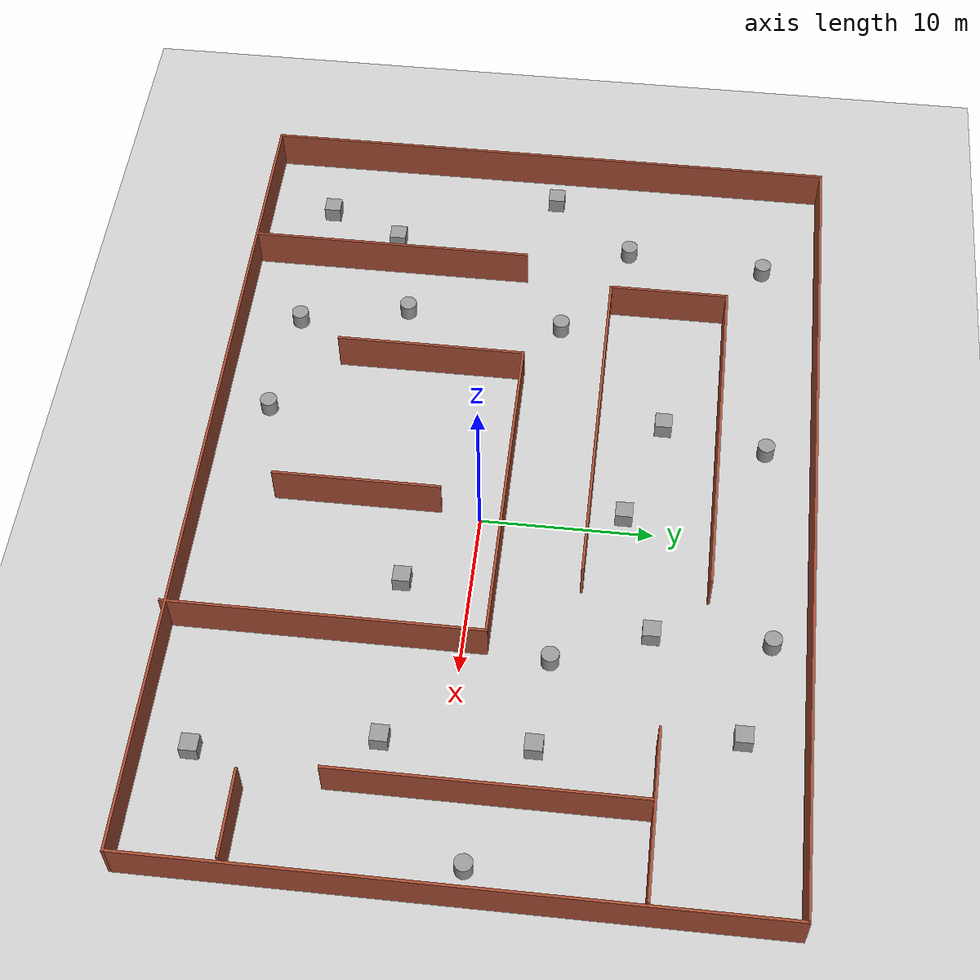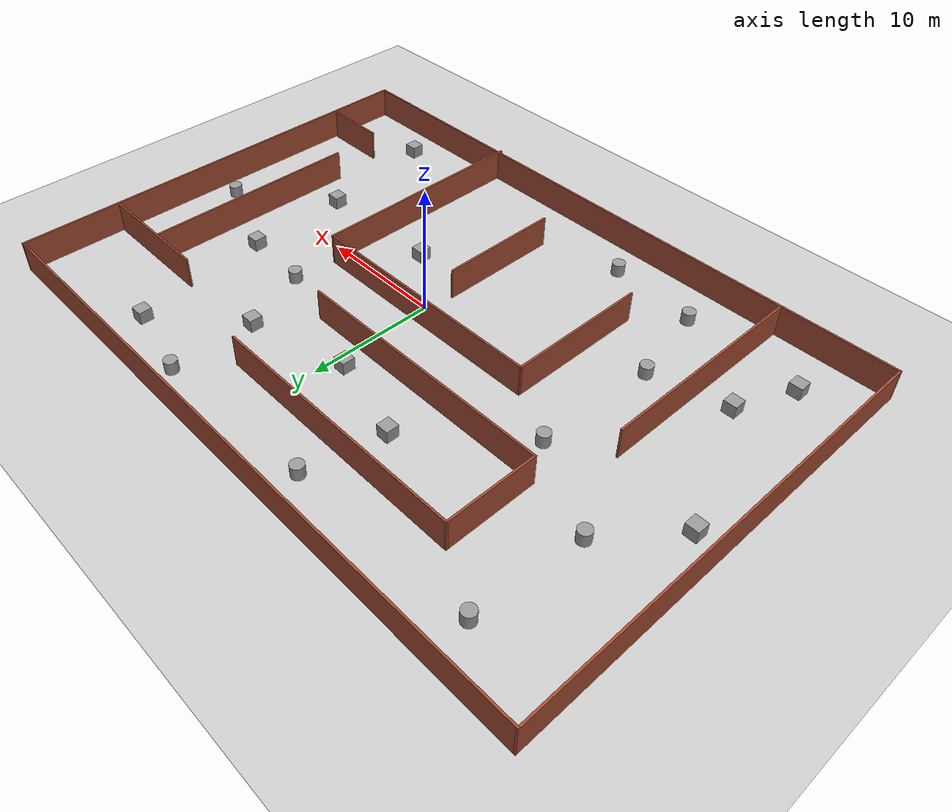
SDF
<sdf version="1.7">
 <world name="default">
  <light name="sun" type="directional">
   <pose>0 0 10 0 -0 0</pose>
   <diffuse>0.8 0.8 0.8 1</diffuse>
   <specular>0.2 0.2 0.2 1</specular>
   <attenuation>
    <range>1000</range>
    <constant>0.9</constant>
    <linear>0.01</linear>
    <quadratic>0.001</quadratic>
   </attenuation>
   <direction>-0.5 0.1 -0.9</direction>
   <spot><inner_angle>0</inner_angle><outer_angle>0</outer_angle><falloff>0</falloff></spot>
  </light>
  <model name="ground_plane">
   <static>1</static>
   <link name="link">
    <collision name="collision">
     <geometry><plane><normal>0 0 1</normal><size>100 100</size></plane></geometry>
     <surface><friction><ode><mu>100</mu><mu2>50</mu2></ode></friction></surface>
    </collision>
    <visual name="visual">
     <cast_shadows>0</cast_shadows>
     <geometry><plane><normal>0 0 1</normal><size>100 100</size></plane></geometry>
     <material>
      <script><uri>file://media/materials/scripts/gazebo.material</uri><name>Gazebo/Grey</name></script>
     </material>
    </visual>
   </link>
  </model>
  <gravity>0 0 -9.8</gravity>
  <magnetic_field>6e-06 2.3e-05 -4.2e-05</magnetic_field>
  <atmosphere type="adiabatic"/>
  <physics type="ode">
   <max_step_size>0.001</max_step_size>
   <real_time_factor>1</real_time_factor>
   <real_time_update_rate>1000</real_time_update_rate>
  </physics>
  <scene><ambient>0.4 0.4 0.4 1</ambient><background>0.7 0.7 0.7 1</background><shadows>1</shadows></scene>
  <spherical_coordinates>
   <surface_model>EARTH_WGS84</surface_model>
   <latitude_deg>0</latitude_deg>
   <longitude_deg>0</longitude_deg>
   <elevation>0</elevation>
   <heading_deg>0</heading_deg>
  </spherical_coordinates>
  <model name="teb_world">
   <pose>-1.9036 1.21909 0 0 -0 0</pose>
   <link name="Wall_10">
    <collision name="Wall_10_Collision">
     <geometry><box><size>7.25 0.15 2.5</size></box></geometry>
     <pose>0 0 1.25 0 -0 0</pose>
    </collision>
    <visual name="Wall_10_Visual">
     <pose>0 0 1.25 0 -0 0</pose>
     <geometry><box><size>7.25 0.15 2.5</size></box></geometry>
     <material>
      <script><uri>file://media/materials/scripts/gazebo.material</uri><name>Gazebo/Bricks</name></script>
      <ambient>1 1 1 1</ambient>
     </material>
     <meta><layer>0</layer></meta>
    </visual>
    <pose>-14.5047 8.54185 0 0 -0 -1.5708</pose>
   </link>
   <link name="Wall_11">
    <collision name="Wall_11_Collision">
     <geometry><box><size>20.75 0.15 2.5</size></box></geometry>
     <pose>0 0 1.25 0 -0 0</pose>
    </collision>
    <visual name="Wall_11_Visual">
     <pose>0 0 1.25 0 -0 0</pose>
     <geometry><box><size>20.75 0.15 2.5</size></box></geometry>
     <material>
      <script><uri>file://media/materials/scripts/gazebo.material</uri><name>Gazebo/Bricks</name></script>
      <ambient>1 1 1 1</ambient>
     </material>
     <meta><layer>0</layer></meta>
    </visual>
    <pose>-4.20469 4.99185 0 0 -0 0</pose>
   </link>
   <link name="Wall_14">
    <collision name="Wall_14_Collision">
     <geometry><box><size>17 0.15 2.5</size></box></geometry>
     <pose>0 0 1.25 0 -0 0</pose>
    </collision>
    <visual name="Wall_14_Visual">
     <pose>0 0 1.25 0 -0 0</pose>
     <geometry><box><size>17 0.15 2.5</size></box></geometry>
     <material>
      <script><uri>file://media/materials/scripts/gazebo.material</uri><name>Gazebo/Bricks</name></script>
      <ambient>1 1 1 1</ambient>
     </material>
     <meta><layer>0</layer></meta>
    </visual>
    <pose>-16.5669 -8.83489 0 0 -0 -1.5708</pose>
   </link>
   <link name="Wall_16">
    <collision name="Wall_16_Collision">
     <geometry><box><size>19.5 0.15 2.5</size></box></geometry>
     <pose>0 0 1.25 0 -0 0</pose>
    </collision>
    <visual name="Wall_16_Visual">
     <pose>0 0 1.25 0 -0 0</pose>
     <geometry><box><size>19.5 0.15 2.5</size></box></geometry>
     <material>
      <script><uri>file://media/materials/scripts/gazebo.material</uri><name>Gazebo/Bricks</name></script>
      <ambient>1 1 1 1</ambient>
     </material>
     <meta><layer>0</layer></meta>
    </visual>
    <pose>0.935569 0.159379 0 0 -0 0</pose>
   </link>
   <link name="Wall_17">
    <collision name="Wall_17_Collision">
     <geometry><box><size>18 0.15 2.5</size></box></geometry>
     <pose>0 0 1.25 0 -0 0</pose>
    </collision>
    <visual name="Wall_17_Visual">
     <pose>0 0 1.25 0 -0 0</pose>
     <geometry><box><size>18 0.15 2.5</size></box></geometry>
     <material>
      <script><uri>file://media/materials/scripts/gazebo.material</uri><name>Gazebo/Bricks</name></script>
      <ambient>1 1 1 1</ambient>
     </material>
     <meta><layer>0</layer></meta>
    </visual>
    <pose>10.6106 -8.76562 0 0 -0 -1.5708</pose>
   </link>
   <link name="Wall_19">
    <collision name="Wall_19_Collision">
     <geometry><box><size>11.25 0.15 2.5</size></box></geometry>
     <pose>0 0 1.25 0 -0 0</pose>
    </collision>
    <visual name="Wall_19_Visual">
     <pose>0 0 1.25 0 -0 0</pose>
     <geometry><box><size>11.25 0.15 2.5</size></box></geometry>
     <material>
      <script><uri>file://media/materials/scripts/gazebo.material</uri><name>Gazebo/Bricks</name></script>
      <ambient>1 1 1 1</ambient>
     </material>
     <meta><layer>0</layer></meta>
    </visual>
    <pose>-8.73943 -5.39062 0 0 -0 -1.5708</pose>
   </link>
   <link name="Wall_22">
    <collision name="Wall_22_Collision">
     <geometry><box><size>9.75 0.15 2.5</size></box></geometry>
     <pose>0 0 1.25 0 -0 0</pose>
    </collision>
    <visual name="Wall_22_Visual">
     <pose>0 0 1.25 0 -0 0</pose>
     <geometry><box><size>9.75 0.15 2.5</size></box></geometry>
     <material>
      <script><uri>file://media/materials/scripts/gazebo.material</uri><name>Gazebo/Bricks</name></script>
      <ambient>1 1 1 1</ambient>
     </material>
     <meta><layer>0</layer></meta>
    </visual>
    <pose>20.2546 9.83698 0 0 -0 0</pose>
   </link>
   <link name="Wall_24">
    <collision name="Wall_24_Collision">
     <geometry><box><size>17.25 0.15 2.5</size></box></geometry>
     <pose>0 0 1.25 0 -0 0</pose>
    </collision>
    <visual name="Wall_24_Visual">
     <pose>0 0 1.25 0 -0 0</pose>
     <geometry><box><size>17.25 0.15 2.5</size></box></geometry>
     <material>
      <script><uri>file://media/materials/scripts/gazebo.material</uri><name>Gazebo/Bricks</name></script>
      <ambient>1 1 1 1</ambient>
     </material>
     <meta><layer>0</layer></meta>
    </visual>
    <pose>19.5818 1.14467 0 0 -0 -1.5708</pose>
   </link>
   <link name="Wall_26">
    <collision name="Wall_26_Collision">
     <geometry><box><size>5 0.15 2.5</size></box></geometry>
     <pose>0 0 1.25 0 -0 0</pose>
    </collision>
    <visual name="Wall_26_Visual">
     <pose>0 0 1.25 0 -0 0</pose>
     <geometry><box><size>5 0.15 2.5</size></box></geometry>
     <material>
      <script><uri>file://media/materials/scripts/gazebo.material</uri><name>Gazebo/Bricks</name></script>
      <ambient>1 1 1 1</ambient>
     </material>
     <meta><layer>0</layer></meta>
    </visual>
    <pose>22.5761 -11.653 0 0 -0 0</pose>
   </link>
   <link name="Wall_28">
    <collision name="Wall_28_Collision">
     <geometry><box><size>9.75 0.15 2.5</size></box></geometry>
     <pose>0 0 1.25 0 -0 0</pose>
    </collision>
    <visual name="Wall_28_Visual">
     <pose>0 0 1.25 0 -0 0</pose>
     <geometry><box><size>9.75 0.15 2.5</size></box></geometry>
     <material>
      <script><uri>file://media/materials/scripts/gazebo.material</uri><name>Gazebo/Bricks</name></script>
      <ambient>1 1 1 1</ambient>
     </material>
     <meta><layer>0</layer></meta>
    </visual>
    <pose>1.50744 -8.34088 0 0 -0 -1.5708</pose>
   </link>
   <link name="Wall_4">
    <collision name="Wall_4_Collision">
     <geometry><box><size>50.75 0.15 2.5</size></box></geometry>
     <pose>0 0 1.25 0 -0 0</pose>
    </collision>
    <visual name="Wall_4_Visual">
     <pose>0 0 1.25 0 -0 0</pose>
     <geometry><box><size>50.75 0.15 2.5</size></box></geometry>
     <material>
      <script><uri>file://media/materials/scripts/gazebo.material</uri><name>Gazebo/Bricks</name></script>
      <ambient>1 1 1 1</ambient>
     </material>
     <meta><layer>0</layer></meta>
    </visual>
    <pose>0 17.6906 0 0 -0 0</pose>
   </link>
   <link name="Wall_5">
    <collision name="Wall_5_Collision">
     <geometry><box><size>35.25 0.15 2.5</size></box></geometry>
     <pose>0 0 1.25 0 -0 0</pose>
    </collision>
    <visual name="Wall_5_Visual">
     <pose>0 0 1.25 0 -0 0</pose>
     <geometry><box><size>35.25 0.15 2.5</size></box></geometry>
     <material>
      <script><uri>file://media/materials/scripts/gazebo.material</uri><name>Gazebo/Bricks</name></script>
      <ambient>1 1 1 1</ambient>
     </material>
     <meta><layer>0</layer></meta>
    </visual>
    <pose>25.3 0.140621 0 0 -0 -1.5708</pose>
   </link>
   <link name="Wall_6">
    <collision name="Wall_6_Collision">
     <geometry><box><size>50.75 0.15 2.5</size></box></geometry>
     <pose>0 0 1.25 0 -0 0</pose>
    </collision>
    <visual name="Wall_6_Visual">
     <pose>0 0 1.25 0 -0 0</pose>
     <geometry><box><size>50.75 0.15 2.5</size></box></geometry>
     <material>
      <script><uri>file://media/materials/scripts/gazebo.material</uri><name>Gazebo/Bricks</name></script>
      <ambient>1 1 1 1</ambient>
     </material>
     <meta><layer>0</layer></meta>
    </visual>
    <pose>0 -17.4094 0 0 -0 3.14159</pose>
   </link>
   <link name="Wall_7">
    <collision name="Wall_7_Collision">
     <geometry><box><size>35.25 0.15 2.5</size></box></geometry>
     <pose>0 0 1.25 0 -0 0</pose>
    </collision>
    <visual name="Wall_7_Visual">
     <pose>0 0 1.25 0 -0 0</pose>
     <geometry><box><size>35.25 0.15 2.5</size></box></geometry>
     <material>
      <script><uri>file://media/materials/scripts/gazebo.material</uri><name>Gazebo/Bricks</name></script>
      <ambient>1 1 1 1</ambient>
     </material>
     <meta><layer>0</layer></meta>
    </visual>
    <pose>-25.3 0.140621 0 0 -0 1.5708</pose>
   </link>
   <link name="Wall_9">
    <collision name="Wall_9_Collision">
     <geometry><box><size>20.75 0.15 2.5</size></box></geometry>
     <pose>0 0 1.25 0 -0 0</pose>
    </collision>
    <visual name="Wall_9_Visual">
     <pose>0 0 1.25 0 -0 0</pose>
     <geometry><box><size>20.75 0.15 2.5</size></box></geometry>
     <material>
      <script><uri>file://media/materials/scripts/gazebo.material</uri><name>Gazebo/Bricks</name></script>
      <ambient>1 1 1 1</ambient>
     </material>
     <meta><layer>0</layer></meta>
    </visual>
    <pose>-4.20469 12.0918 0 0 -0 3.14159</pose>
   </link>
   <static>1</static>
  </model>
  <model name="unit_cylinder">
   <pose>-6.69066 -13.4698 0.499992 -3e-06 2e-06 0</pose>
   <link name="link">
    <inertial>
     <mass>1</mass>
     <inertia><ixx>0.145833</ixx><ixy>0</ixy><ixz>0</ixz><iyy>0.145833</iyy><iyz>0</iyz><izz>0.125</izz></inertia>
    </inertial>
    <collision name="collision">
     <geometry><cylinder><radius>0.5</radius><length>1</length></cylinder></geometry>
    </collision>
    <visual name="visual">
     <geometry><cylinder><radius>0.5</radius><length>1</length></cylinder></geometry>
     <material>
      <script><name>Gazebo/Grey</name><uri>file://media/materials/scripts/gazebo.material</uri></script>
     </material>
    </visual>
   </link>
  </model>
  <model name="unit_cylinder_0">
   <pose>-13.6322 -12.7486 0.499998 3e-06 -2e-06 0</pose>
   <link name="link">
    <inertial>
     <mass>1</mass>
     <inertia><ixx>0.145833</ixx><ixy>0</ixy><ixz>0</ixz><iyy>0.145833</iyy><iyz>0</iyz><izz>0.125</izz></inertia>
    </inertial>
    <collision name="collision">
     <geometry><cylinder><radius>0.5</radius><length>1</length></cylinder></geometry>
    </collision>
    <visual name="visual">
     <geometry><cylinder><radius>0.5</radius><length>1</length></cylinder></geometry>
     <material>
      <script><name>Gazebo/Grey</name><uri>file://media/materials/scripts/gazebo.material</uri></script>
     </material>
    </visual>
   </link>
  </model>
  <model name="unit_cylinder_1">
   <pose>-15.0646 -6.21021 0.499998 3e-06 -2e-06 0</pose>
   <link name="link">
    <inertial>
     <mass>1</mass>
     <inertia><ixx>0.145833</ixx><ixy>0</ixy><ixz>0</ixz><iyy>0.145833</iyy><iyz>0</iyz><izz>0.125</izz></inertia>
    </inertial>
    <collision name="collision">
     <geometry><cylinder><radius>0.5</radius><length>1</length></cylinder></geometry>
    </collision>
    <visual name="visual">
     <geometry><cylinder><radius>0.5</radius><length>1</length></cylinder></geometry>
     <material>
      <script><name>Gazebo/Grey</name><uri>file://media/materials/scripts/gazebo.material</uri></script>
     </material>
    </visual>
   </link>
  </model>
  <model name="unit_cylinder_2">
   <pose>-14.6046 3.33713 0.499997 3e-06 -2e-06 0</pose>
   <link name="link">
    <inertial>
     <mass>1</mass>
     <inertia><ixx>0.145833</ixx><ixy>0</ixy><ixz>0</ixz><iyy>0.145833</iyy><iyz>0</iyz><izz>0.125</izz></inertia>
    </inertial>
    <collision name="collision">
     <geometry><cylinder><radius>0.5</radius><length>1</length></cylinder></geometry>
    </collision>
    <visual name="visual">
     <geometry><cylinder><radius>0.5</radius><length>1</length></cylinder></geometry>
     <material>
      <script><name>Gazebo/Grey</name><uri>file://media/materials/scripts/gazebo.material</uri></script>
     </material>
    </visual>
   </link>
  </model>
  <model name="unit_box">
   <pose>-22.8413 -12.1652 0.5 0 -0 0</pose>
   <link name="link">
    <inertial>
     <mass>1</mass>
     <inertia>
      <ixx>0.166667</ixx>
      <ixy>0</ixy>
      <ixz>0</ixz>
      <iyy>0.166667</iyy>
      <iyz>0</iyz>
      <izz>0.166667</izz>
     </inertia>
    </inertial>
    <collision name="collision"><geometry><box><size>1 1 1</size></box></geometry></collision>
    <visual name="visual">
     <geometry><box><size>1 1 1</size></box></geometry>
     <material>
      <script><name>Gazebo/Grey</name><uri>file://media/materials/scripts/gazebo.material</uri></script>
     </material>
    </visual>
   </link>
  </model>
  <model name="unit_box_0">
   <pose>-20.9247 -7.65712 0.5 -0 -0 -0</pose>
   <link name="link">
    <inertial>
     <mass>1</mass>
     <inertia>
      <ixx>0.166667</ixx>
      <ixy>0</ixy>
      <ixz>0</ixz>
      <iyy>0.166667</iyy>
      <iyz>0</iyz>
      <izz>0.166667</izz>
     </inertia>
    </inertial>
    <collision name="collision"><geometry><box><size>1 1 1</size></box></geometry></collision>
    <visual name="visual">
     <geometry><box><size>1 1 1</size></box></geometry>
     <material>
      <script><name>Gazebo/Grey</name><uri>file://media/materials/scripts/gazebo.material</uri></script>
     </material>
    </visual>
   </link>
  </model>
  <model name="unit_box_1">
   <pose>-25.1898 2.11963 0.5 0 -0 0</pose>
   <link name="link">
    <inertial>
     <mass>1</mass>
     <inertia>
      <ixx>0.166667</ixx>
      <ixy>0</ixy>
      <ixz>0</ixz>
      <iyy>0.166667</iyy>
      <iyz>0</iyz>
      <izz>0.166667</izz>
     </inertia>
    </inertial>
    <collision name="collision"><geometry><box><size>1 1 1</size></box></geometry></collision>
    <visual name="visual">
     <geometry><box><size>1 1 1</size></box></geometry>
     <material>
      <script><name>Gazebo/Grey</name><uri>file://media/materials/scripts/gazebo.material</uri></script>
     </material>
    </visual>
   </link>
  </model>
  <model name="unit_cylinder_3">
   <pose>-21.2014 7.10299 0.499992 -3e-06 2e-06 0</pose>
   <link name="link">
    <inertial>
     <mass>1</mass>
     <inertia><ixx>0.145833</ixx><ixy>0</ixy><ixz>0</ixz><iyy>0.145833</iyy><iyz>0</iyz><izz>0.125</izz></inertia>
    </inertial>
    <collision name="collision">
     <geometry><cylinder><radius>0.5</radius><length>1</length></cylinder></geometry>
    </collision>
    <visual name="visual">
     <geometry><cylinder><radius>0.5</radius><length>1</length></cylinder></geometry>
     <material>
      <script><name>Gazebo/Grey</name><uri>file://media/materials/scripts/gazebo.material</uri></script>
     </material>
    </visual>
   </link>
  </model>
  <model name="unit_cylinder_4">
   <pose>-20.5482 15.5499 0.499997 3e-06 -3e-06 0</pose>
   <link name="link">
    <inertial>
     <mass>1</mass>
     <inertia><ixx>0.145833</ixx><ixy>0</ixy><ixz>0</ixz><iyy>0.145833</iyy><iyz>0</iyz><izz>0.125</izz></inertia>
    </inertial>
    <collision name="collision">
     <geometry><cylinder><radius>0.5</radius><length>1</length></cylinder></geometry>
    </collision>
    <visual name="visual">
     <geometry><cylinder><radius>0.5</radius><length>1</length></cylinder></geometry>
     <material>
      <script><name>Gazebo/Grey</name><uri>file://media/materials/scripts/gazebo.material</uri></script>
     </material>
    </visual>
   </link>
  </model>
  <model name="unit_box_2">
   <pose>-7.62954 10.0706 0.5 -0 -0 -0</pose>
   <link name="link">
    <inertial>
     <mass>1</mass>
     <inertia>
      <ixx>0.166667</ixx>
      <ixy>0</ixy>
      <ixz>0</ixz>
      <iyy>0.166667</iyy>
      <iyz>0</iyz>
      <izz>0.166667</izz>
     </inertia>
    </inertial>
    <collision name="collision"><geometry><box><size>1 1 1</size></box></geometry></collision>
    <visual name="visual">
     <geometry><box><size>1 1 1</size></box></geometry>
     <material>
      <script><name>Gazebo/Grey</name><uri>file://media/materials/scripts/gazebo.material</uri></script>
     </material>
    </visual>
   </link>
  </model>
  <model name="unit_cylinder_5">
   <pose>-6.41047 16.1659 0.499992 -3e-06 3e-06 0</pose>
   <link name="link">
    <inertial>
     <mass>1</mass>
     <inertia><ixx>0.145833</ixx><ixy>0</ixy><ixz>0</ixz><iyy>0.145833</iyy><iyz>0</iyz><izz>0.125</izz></inertia>
    </inertial>
    <collision name="collision">
     <geometry><cylinder><radius>0.5</radius><length>1</length></cylinder></geometry>
    </collision>
    <visual name="visual">
     <geometry><cylinder><radius>0.5</radius><length>1</length></cylinder></geometry>
     <material>
      <script><name>Gazebo/Grey</name><uri>file://media/materials/scripts/gazebo.material</uri></script>
     </material>
    </visual>
   </link>
  </model>
  <model name="unit_box_3">
   <pose>-0.996435 8.20843 0.5 -0 -0 -0</pose>
   <link name="link">
    <inertial>
     <mass>1</mass>
     <inertia>
      <ixx>0.166667</ixx>
      <ixy>0</ixy>
      <ixz>0</ixz>
      <iyy>0.166667</iyy>
      <iyz>0</iyz>
      <izz>0.166667</izz>
     </inertia>
    </inertial>
    <collision name="collision"><geometry><box><size>1 1 1</size></box></geometry></collision>
    <visual name="visual">
     <geometry><box><size>1 1 1</size></box></geometry>
     <material>
      <script><name>Gazebo/Grey</name><uri>file://media/materials/scripts/gazebo.material</uri></script>
     </material>
    </visual>
   </link>
  </model>
  <model name="unit_box_4">
   <pose>4.6681 -3.84066 0.5 0 -0 0</pose>
   <link name="link">
    <inertial>
     <mass>1</mass>
     <inertia>
      <ixx>0.166667</ixx>
      <ixy>0</ixy>
      <ixz>0</ixz>
      <iyy>0.166667</iyy>
      <iyz>0</iyz>
      <izz>0.166667</izz>
     </inertia>
    </inertial>
    <collision name="collision"><geometry><box><size>1 1 1</size></box></geometry></collision>
    <visual name="visual">
     <geometry><box><size>1 1 1</size></box></geometry>
     <material>
      <script><name>Gazebo/Grey</name><uri>file://media/materials/scripts/gazebo.material</uri></script>
     </material>
    </visual>
   </link>
  </model>
  <model name="unit_box_5">
   <pose>6.72621 10.2693 0.5 -0 -0 -0</pose>
   <link name="link">
    <inertial>
     <mass>1</mass>
     <inertia>
      <ixx>0.166667</ixx>
      <ixy>0</ixy>
      <ixz>0</ixz>
      <iyy>0.166667</iyy>
      <iyz>0</iyz>
      <izz>0.166667</izz>
     </inertia>
    </inertial>
    <collision name="collision"><geometry><box><size>1 1 1</size></box></geometry></collision>
    <visual name="visual">
     <geometry><box><size>1 1 1</size></box></geometry>
     <material>
      <script><name>Gazebo/Grey</name><uri>file://media/materials/scripts/gazebo.material</uri></script>
     </material>
    </visual>
   </link>
  </model>
  <model name="unit_box_6">
   <pose>14.3397 4.54222 0.5 0 -0 0</pose>
   <link name="link">
    <inertial>
     <mass>1</mass>
     <inertia>
      <ixx>0.166667</ixx>
      <ixy>0</ixy>
      <ixz>0</ixz>
      <iyy>0.166667</iyy>
      <iyz>0</iyz>
      <izz>0.166667</izz>
     </inertia>
    </inertial>
    <collision name="collision"><geometry><box><size>1 1 1</size></box></geometry></collision>
    <visual name="visual">
     <geometry><box><size>1 1 1</size></box></geometry>
     <material>
      <script><name>Gazebo/Grey</name><uri>file://media/materials/scripts/gazebo.material</uri></script>
     </material>
    </visual>
   </link>
  </model>
  <model name="unit_box_7">
   <pose>14.6556 -3.63305 0.5 -0 -0 -0</pose>
   <link name="link">
    <inertial>
     <mass>1</mass>
     <inertia>
      <ixx>0.166667</ixx>
      <ixy>0</ixy>
      <ixz>0</ixz>
      <iyy>0.166667</iyy>
      <iyz>0</iyz>
      <izz>0.166667</izz>
     </inertia>
    </inertial>
    <collision name="collision"><geometry><box><size>1 1 1</size></box></geometry></collision>
    <visual name="visual">
     <geometry><box><size>1 1 1</size></box></geometry>
     <material>
      <script><name>Gazebo/Grey</name><uri>file://media/materials/scripts/gazebo.material</uri></script>
     </material>
    </visual>
   </link>
  </model>
  <model name="unit_box_8">
   <pose>16.271 -13.4935 0.5 0 -0 0</pose>
   <link name="link">
    <inertial>
     <mass>1</mass>
     <inertia>
      <ixx>0.166667</ixx>
      <ixy>0</ixy>
      <ixz>0</ixz>
      <iyy>0.166667</iyy>
      <iyz>0</iyz>
      <izz>0.166667</izz>
     </inertia>
    </inertial>
    <collision name="collision"><geometry><box><size>1 1 1</size></box></geometry></collision>
    <visual name="visual">
     <geometry><box><size>1 1 1</size></box></geometry>
     <material>
      <script><name>Gazebo/Grey</name><uri>file://media/materials/scripts/gazebo.material</uri></script>
     </material>
    </visual>
   </link>
  </model>
  <model name="unit_cylinder_6">
   <pose>21.4662 1.66949 0.499992 -3e-06 -4e-06 -0</pose>
   <link name="link">
    <inertial>
     <mass>1</mass>
     <inertia><ixx>0.145833</ixx><ixy>0</ixy><ixz>0</ixz><iyy>0.145833</iyy><iyz>0</iyz><izz>0.125</izz></inertia>
    </inertial>
    <collision name="collision">
     <geometry><cylinder><radius>0.5</radius><length>1</length></cylinder></geometry>
    </collision>
    <visual name="visual">
     <geometry><cylinder><radius>0.5</radius><length>1</length></cylinder></geometry>
     <material>
      <script><name>Gazebo/Grey</name><uri>file://media/materials/scripts/gazebo.material</uri></script>
     </material>
    </visual>
   </link>
  </model>
  <model name="unit_box_9">
   <pose>12.6814 15.5395 0.5 0 -0 0</pose>
   <link name="link">
    <inertial>
     <mass>1</mass>
     <inertia>
      <ixx>0.166667</ixx>
      <ixy>0</ixy>
      <ixz>0</ixz>
      <iyy>0.166667</iyy>
      <iyz>0</iyz>
      <izz>0.166667</izz>
     </inertia>
    </inertial>
    <collision name="collision"><geometry><box><size>1 1 1</size></box></geometry></collision>
    <visual name="visual">
     <geometry><box><size>1 1 1</size></box></geometry>
     <material>
      <script><name>Gazebo/Grey</name><uri>file://media/materials/scripts/gazebo.material</uri></script>
     </material>
    </visual>
   </link>
  </model>
  <model name="unit_cylinder_7">
   <pose>6.67108 16.913 0.499993 -3e-06 -4e-06 -0</pose>
   <link name="link">
    <inertial>
     <mass>1</mass>
     <inertia><ixx>0.145833</ixx><ixy>0</ixy><ixz>0</ixz><iyy>0.145833</iyy><iyz>0</iyz><izz>0.125</izz></inertia>
    </inertial>
    <collision name="collision">
     <geometry><cylinder><radius>0.5</radius><length>1</length></cylinder></geometry>
    </collision>
    <visual name="visual">
     <geometry><cylinder><radius>0.5</radius><length>1</length></cylinder></geometry>
     <material>
      <script><name>Gazebo/Grey</name><uri>file://media/materials/scripts/gazebo.material</uri></script>
     </material>
    </visual>
   </link>
  </model>
  <model name="unit_cylinder_8">
   <pose>8.93256 4.89023 0.499993 -3e-06 -4e-06 -0</pose>
   <link name="link">
    <inertial>
     <mass>1</mass>
     <inertia><ixx>0.145833</ixx><ixy>0</ixy><ixz>0</ixz><iyy>0.145833</iyy><iyz>0</iyz><izz>0.125</izz></inertia>
    </inertial>
    <collision name="collision">
     <geometry><cylinder><radius>0.5</radius><length>1</length></cylinder></geometry>
    </collision>
    <visual name="visual">
     <geometry><cylinder><radius>0.5</radius><length>1</length></cylinder></geometry>
     <material>
      <script><name>Gazebo/Grey</name><uri>file://media/materials/scripts/gazebo.material</uri></script>
     </material>
    </visual>
   </link>
  </model>
 </world>
</sdf>
